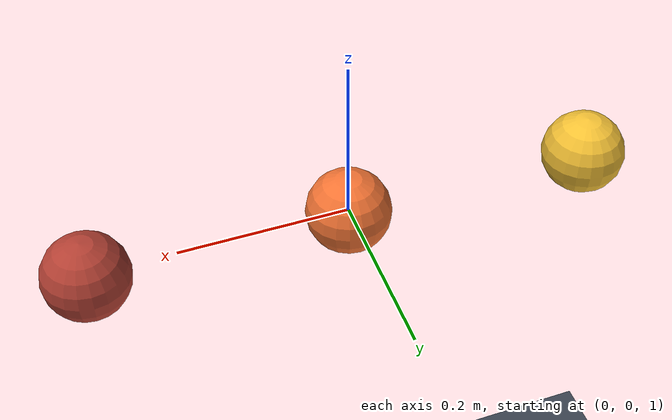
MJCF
<!-- MuJoCo Lab model, written for this site (stella-nova/pages/mujoco-lab). -->
<mujoco model="bouncing balls">
  <option timestep="0.0005" integrator="RK4"/>
  <visual><global azimuth="90" elevation="-10"/></visual>
  <default><geom type="sphere" size=".05" mass="0.1" condim="1"/></default>
  <worldbody>
    <light pos="0 -1 3" dir="0 .3 -1"/>
    <geom name="floor" type="plane" size="2 2 .1" rgba=".22 .25 .3 1" solref="-20000 -0" solimp=".99 .99 .001"/>
    <body name="elastic" pos="-.3 0 1"><freejoint/><geom solref="-20000 -0" solimp=".99 .99 .001" rgba=".95 .75 .2 1"/></body>
    <body name="lively" pos="0 0 1"><freejoint/><geom solref="-20000 -10" solimp=".99 .99 .001" rgba=".95 .45 .2 1"/></body>
    <body name="dead" pos=".3 0 1"><freejoint/><geom solref="-20000 -100" solimp=".99 .99 .001" rgba=".7 .25 .2 1"/></body>
  </worldbody>
</mujoco>
